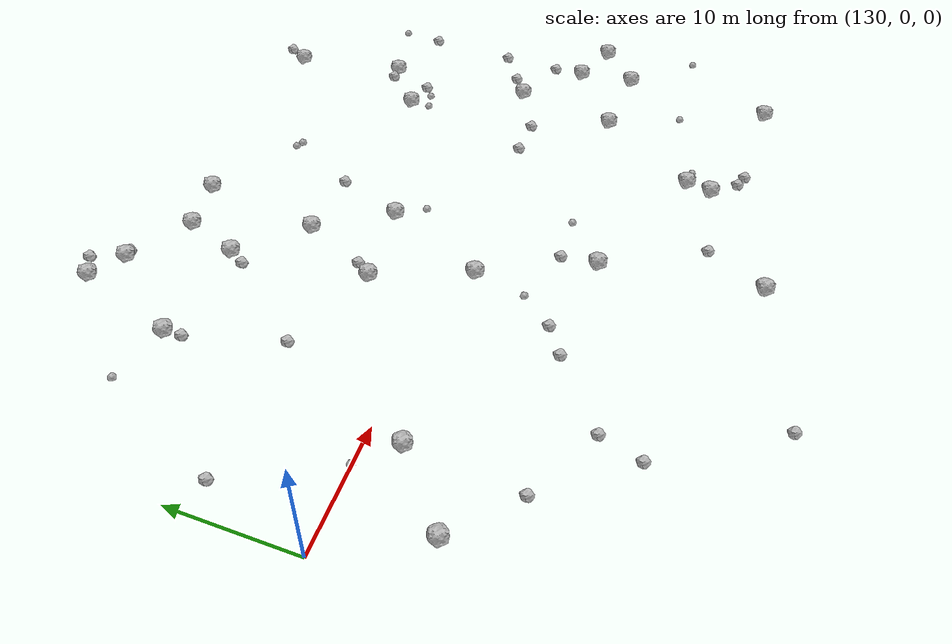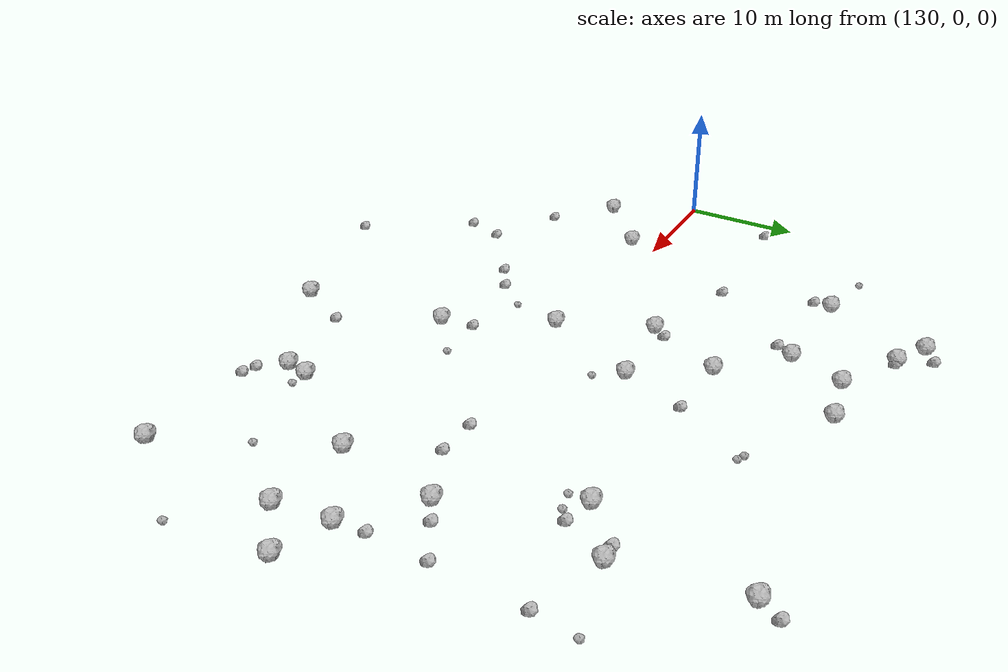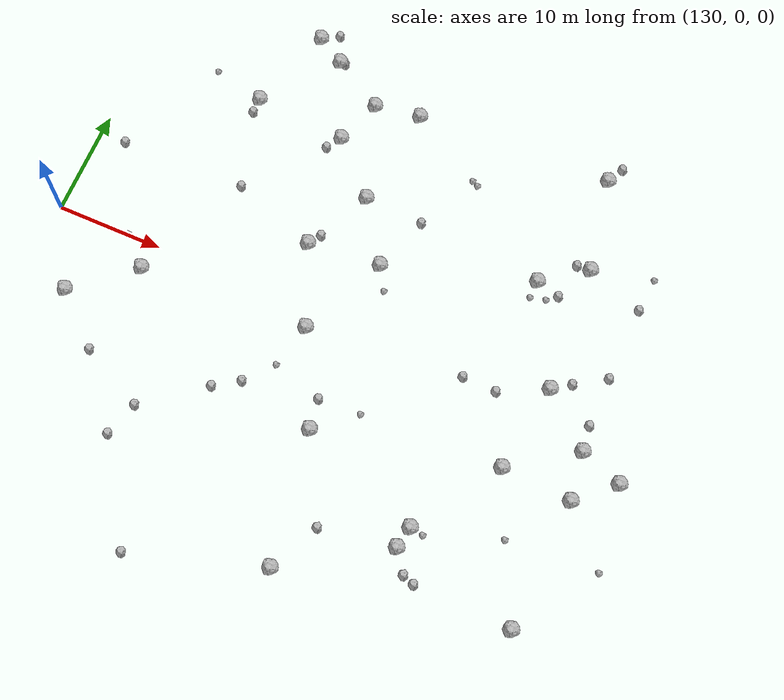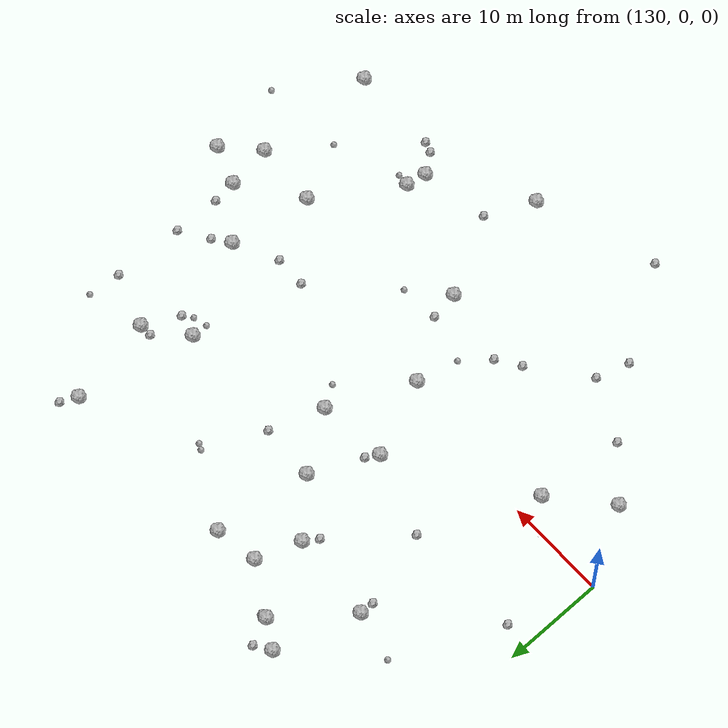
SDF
<sdf version="1.6">
 <world name="default">
  <include><uri>model://sun</uri></include>
  <model name="rock1_4_2">
   <include><uri>model://rock1</uri><pose>176.24866166590942 -6.689146251758213 0.5 0 0 0</pose></include>
  </model>
  <model name="rock1_4_3">
   <include><uri>model://rock1</uri><pose>150.85747434383848 16.61621089445351 0.5 0 0 0</pose></include>
  </model>
  <model name="rock1_4_4">
   <include><uri>model://rock1</uri><pose>175.23022973040287 22.431812267215967 0.5 0 0 0</pose></include>
  </model>
  <model name="rock1_4_5">
   <include><uri>model://rock1</uri><pose>182.06988939294783 -19.263847138094555 0.5 0 0 0</pose></include>
  </model>
  <model name="rock1_4_6">
   <include><uri>model://rock1</uri><pose>182.74330799500268 -7.07529752060141 0.5 0 0 0</pose></include>
  </model>
  <model name="rock1_4_7">
   <include><uri>model://rock1</uri><pose>142.191123018145 17.28693622245718 0.5 0 0 0</pose></include>
  </model>
  <model name="rock1_4_8">
   <include><uri>model://rock1</uri><pose>134.10961630862494 -7.07132617260033 0.5 0 0 0</pose></include>
  </model>
  <model name="rock1_4_9">
   <include><uri>model://rock1</uri><pose>172.83591962878265 10.579759841927789 0.5 0 0 0</pose></include>
  </model>
  <model name="rock1_4_10">
   <include><uri>model://rock1</uri><pose>156.73813650592447 21.606140960057196 0.5 0 0 0</pose></include>
  </model>
  <model name="rock1_4_11">
   <include><uri>model://rock1</uri><pose>155.458200386632 -1.7380785813962305 0.5 0 0 0</pose></include>
  </model>
  <model name="rock1_4_12">
   <include><uri>model://rock1</uri><pose>159.6239324564071 -10.194500115245614 0.5 0 0 0</pose></include>
  </model>
  <model name="rock1_4_13">
   <include><uri>model://rock1</uri><pose>147.55430120659219 23.90388637917539 0.5 0 0 0</pose></include>
  </model>
  <model name="rock1_4_14">
   <include><uri>model://rock1</uri><pose>161.510952708807 -22.545618890166317 0.5 0 0 0</pose></include>
  </model>
  <model name="rock1_4_15">
   <include><uri>model://rock1</uri><pose>159.1867085480795 6.3673068405199444 0.5 0 0 0</pose></include>
  </model>
  <model name="rock1_4_16">
   <include><uri>model://rock1</uri><pose>152.4416529632179 20.964604650014422 0.5 0 0 0</pose></include>
  </model>
  <model name="rock1_4_17">
   <include><uri>model://rock1</uri><pose>144.8712988604072 25.518782466741015 0.5 0 0 0</pose></include>
  </model>
  <model name="rock1_4_18">
   <include><uri>model://rock1</uri><pose>170.63614331560976 -16.7014320712655 0.5 0 0 0</pose></include>
  </model>
  <model name="rock1_4_19">
   <include><uri>model://rock1</uri><pose>176.84490679218192 13.495715264033201 0.5 0 0 0</pose></include>
  </model>
  <model name="rock1_4_20">
   <include><uri>model://rock1</uri><pose>182.1468592356439 -2.575551499801982 0.5 0 0 0</pose></include>
  </model>
  <model name="rock1_4_21">
   <include><uri>model://rock1</uri><pose>186.0517112108715 -4.0387467792081 0.5 0 0 0</pose></include>
  </model>
  <model name="rock1_4_22">
   <include><uri>model://rock1</uri><pose>177.51899705231773 1.5921905522237765 0.5 0 0 0</pose></include>
  </model>
  <model name="rock1_4_23">
   <include><uri>model://rock1</uri><pose>155.43342850084866 11.955329932007842 0.5 0 0 0</pose></include>
  </model>
  <model name="rock1_4_24">
   <include><uri>model://rock1</uri><pose>139.49111010178714 -2.469424100152903 0.5 0 0 0</pose></include>
  </model>
  <model name="rock1_4_25">
   <include><uri>model://rock1</uri><pose>152.34669173827712 5.713448786789918 0.5 0 0 0</pose></include>
  </model>
  <model name="rock1_4_26">
   <include><uri>model://rock1</uri><pose>171.01237860581094 -14.678745330998575 0.5 0 0 0</pose></include>
  </model>
  <model name="rock2_4_0">
   <include><uri>model://rock2</uri><pose>144.34139625665202 8.477848829960863 0.3 0 0 0</pose></include>
  </model>
  <model name="rock2_4_1">
   <include><uri>model://rock2</uri><pose>149.94521567064456 15.244994786844721 0.3 0 0 0</pose></include>
  </model>
  <model name="rock2_4_2">
   <include><uri>model://rock2</uri><pose>152.31328905500038 -8.54104223544839 0.3 0 0 0</pose></include>
  </model>
  <model name="rock2_4_3">
   <include><uri>model://rock2</uri><pose>175.55490925413397 13.448263753622072 0.3 0 0 0</pose></include>
  </model>
  <model name="rock2_4_4">
   <include><uri>model://rock2</uri><pose>173.21325425091874 -0.5317692881360472 0.3 0 0 0</pose></include>
  </model>
  <model name="rock2_4_5">
   <include><uri>model://rock2</uri><pose>163.73178719961973 -17.849799699299354 0.3 0 0 0</pose></include>
  </model>
  <model name="rock2_4_6">
   <include><uri>model://rock2</uri><pose>146.403813671887 26.49890694274503 0.3 0 0 0</pose></include>
  </model>
  <model name="rock2_4_7">
   <include><uri>model://rock2</uri><pose>175.0592591051334 9.994400743902538 0.3 0 0 0</pose></include>
  </model>
  <model name="rock2_4_8">
   <include><uri>model://rock2</uri><pose>181.86390311784015 -0.17632044823032444 0.3 0 0 0</pose></include>
  </model>
  <model name="rock2_4_9">
   <include><uri>model://rock2</uri><pose>159.188879723477 -7.377365823273326 0.3 0 0 0</pose></include>
  </model>
  <model name="rock2_4_10">
   <include><uri>model://rock2</uri><pose>161.0065518467338 11.6759850807926 0.3 0 0 0</pose></include>
  </model>
  <model name="rock2_4_11">
   <include><uri>model://rock2</uri><pose>143.6352637409556 -17.561329265912793 0.3 0 0 0</pose></include>
  </model>
  <model name="rock2_4_12">
   <include><uri>model://rock2</uri><pose>181.94584371919424 4.536667684929 0.3 0 0 0</pose></include>
  </model>
  <model name="rock2_4_13">
   <include><uri>model://rock2</uri><pose>182.17034116130844 11.62138679362291 0.3 0 0 0</pose></include>
  </model>
  <model name="rock2_4_14">
   <include><uri>model://rock2</uri><pose>170.04023053468867 -0.4283472041375873 0.3 0 0 0</pose></include>
  </model>
  <model name="rock2_4_15">
   <include><uri>model://rock2</uri><pose>148.04969069774603 23.937599550164364 0.3 0 0 0</pose></include>
  </model>
  <model name="rock2_4_16">
   <include><uri>model://rock2</uri><pose>150.04731989356577 -10.041477891148475 0.3 0 0 0</pose></include>
  </model>
  <model name="rock2_4_17">
   <include><uri>model://rock2</uri><pose>132.5252373833741 8.227585769116175 0.3 0 0 0</pose></include>
  </model>
  <model name="rock2_4_18">
   <include><uri>model://rock2</uri><pose>172.04468218724796 -18.659693040530655 0.3 0 0 0</pose></include>
  </model>
  <model name="rock2_4_19">
   <include><uri>model://rock2</uri><pose>144.61473702859837 -14.277355824085836 0.3 0 0 0</pose></include>
  </model>
  <model name="rock2_4_20">
   <include><uri>model://rock2</uri><pose>153.09279715503578 6.907337795227363 0.3 0 0 0</pose></include>
  </model>
  <model name="rock2_4_21">
   <include><uri>model://rock2</uri><pose>149.33745465028068 -26.391763840284934 0.3 0 0 0</pose></include>
  </model>
  <model name="rock2_4_22">
   <include><uri>model://rock2</uri><pose>173.12411569218946 -19.05148797851045 0.3 0 0 0</pose></include>
  </model>
  <model name="rock2_4_23">
   <include><uri>model://rock2</uri><pose>176.03847232277948 24.064834630668123 0.3 0 0 0</pose></include>
  </model>
  <model name="rock2_4_24">
   <include><uri>model://rock2</uri><pose>138.66657698810107 -11.278103317442039 0.3 0 0 0</pose></include>
  </model>
  <model name="rock2_4_25">
   <include><uri>model://rock2</uri><pose>142.14896816385408 15.851939271207776 0.3 0 0 0</pose></include>
  </model>
  <model name="rock2_4_26">
   <include><uri>model://rock2</uri><pose>179.16987336218162 2.7515351209669987 0.3 0 0 0</pose></include>
  </model>
  <model name="rock3_4_0">
   <include><uri>model://rock3</uri><pose>137.2808415792004 18.414738138279965 0.2 0 0 0</pose></include>
  </model>
  <model name="rock3_4_1">
   <include><uri>model://rock3</uri><pose>174.14823171818958 9.237132446746195 0.2 0 0 0</pose></include>
  </model>
  <model name="rock3_4_2">
   <include><uri>model://rock3</uri><pose>160.47206579612424 4.192689420459089 0.2 0 0 0</pose></include>
  </model>
  <model name="rock3_4_3">
   <include><uri>model://rock3</uri><pose>178.78933970396702 -12.47289656964655 0.2 0 0 0</pose></include>
  </model>
  <model name="rock3_4_4">
   <include><uri>model://rock3</uri><pose>136.85803324488901 0.05103096266170937 0.2 0 0 0</pose></include>
  </model>
  <model name="rock3_4_5">
   <include><uri>model://rock3</uri><pose>163.72667022031834 17.470208646034465 0.2 0 0 0</pose></include>
  </model>
  <model name="rock3_4_6">
   <include><uri>model://rock3</uri><pose>172.2286070374089 -14.891017322630049 0.2 0 0 0</pose></include>
  </model>
  <model name="rock3_4_7">
   <include><uri>model://rock3</uri><pose>164.30754460024255 17.18683737266251 0.2 0 0 0</pose></include>
  </model>
  <model name="rock3_4_8">
   <include><uri>model://rock3</uri><pose>182.45773651752228 14.871385392094268 0.2 0 0 0</pose></include>
  </model>
  <model name="rock3_4_9">
   <include><uri>model://rock3</uri><pose>187.1128163093343 -11.927103320275581 0.2 0 0 0</pose></include>
  </model>
  <model name="rock3_4_10">
   <include><uri>model://rock3</uri><pose>172.75409232904923 8.88877070242097 0.2 0 0 0</pose></include>
  </model>
  <model name="rock3_4_11">
   <include><uri>model://rock3</uri><pose>163.12006508571028 -7.202216198292842 0.2 0 0 0</pose></include>
  </model>
  <model name="rock3_4_12">
   <include><uri>model://rock3</uri><pose>154.4623688790304 -5.987073243958957 0.2 0 0 0</pose></include>
  </model>
 </world>
</sdf>
